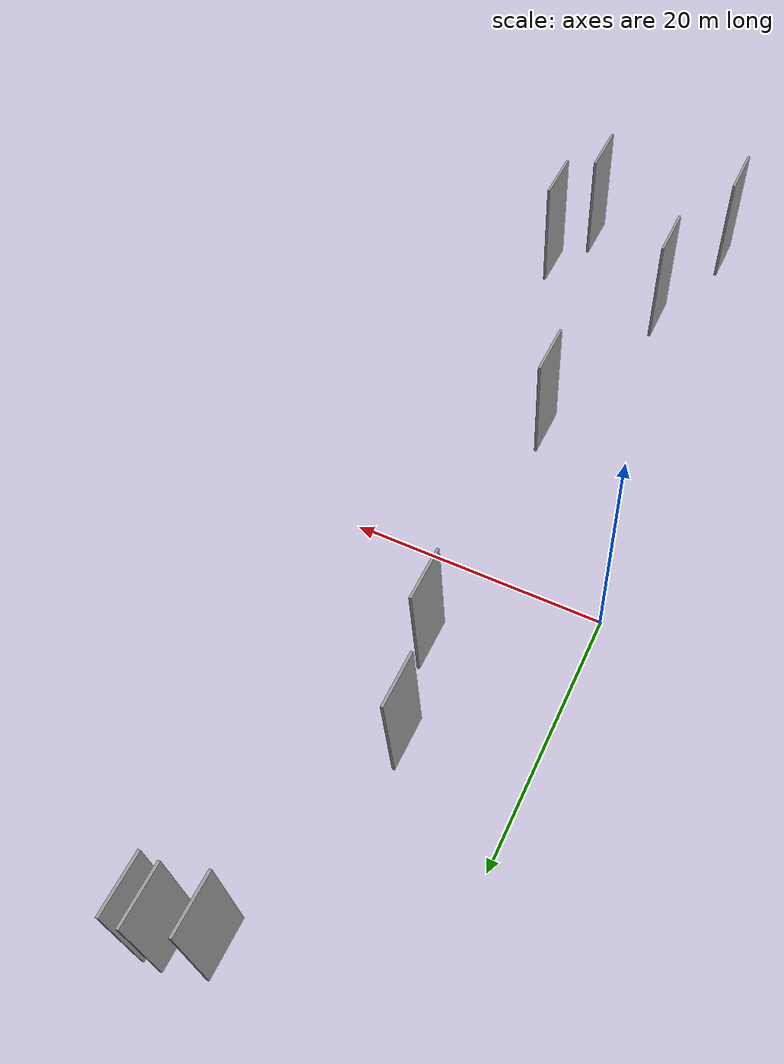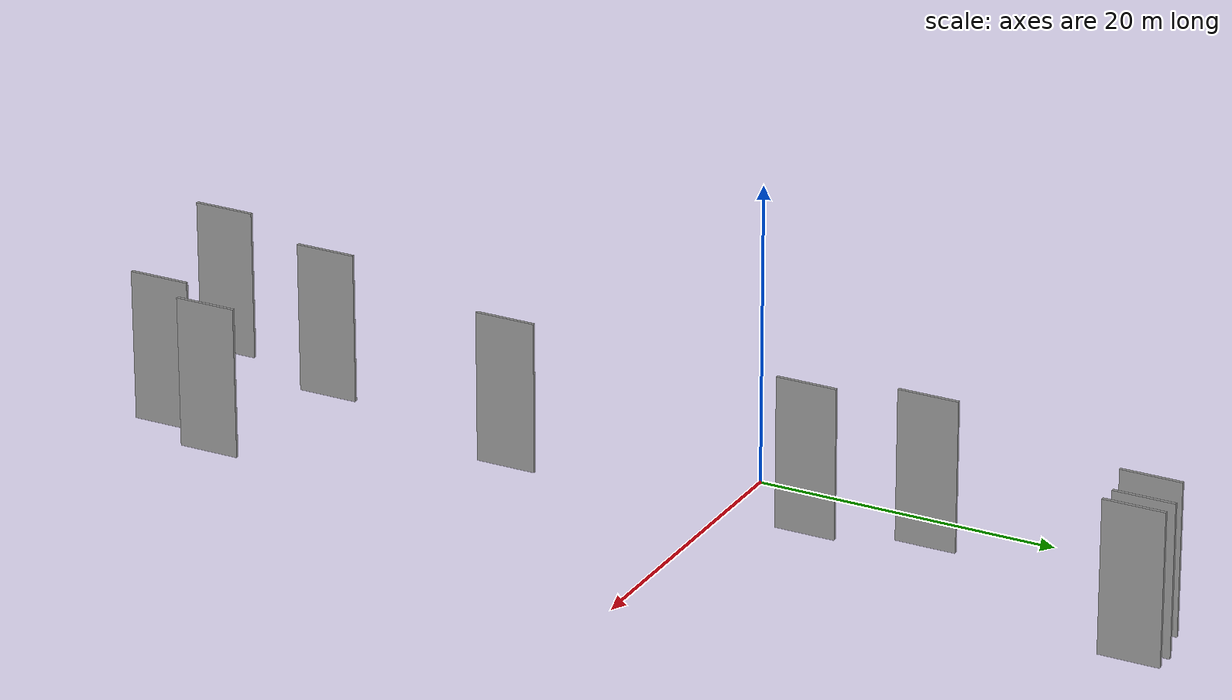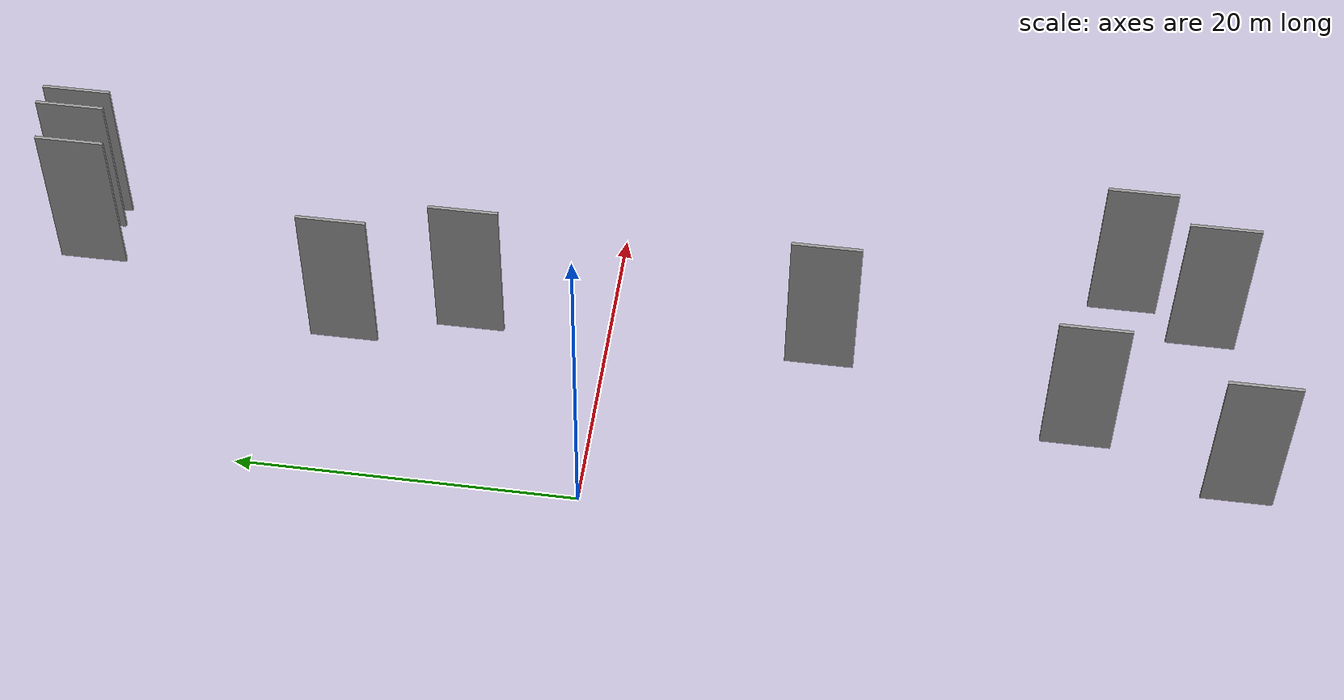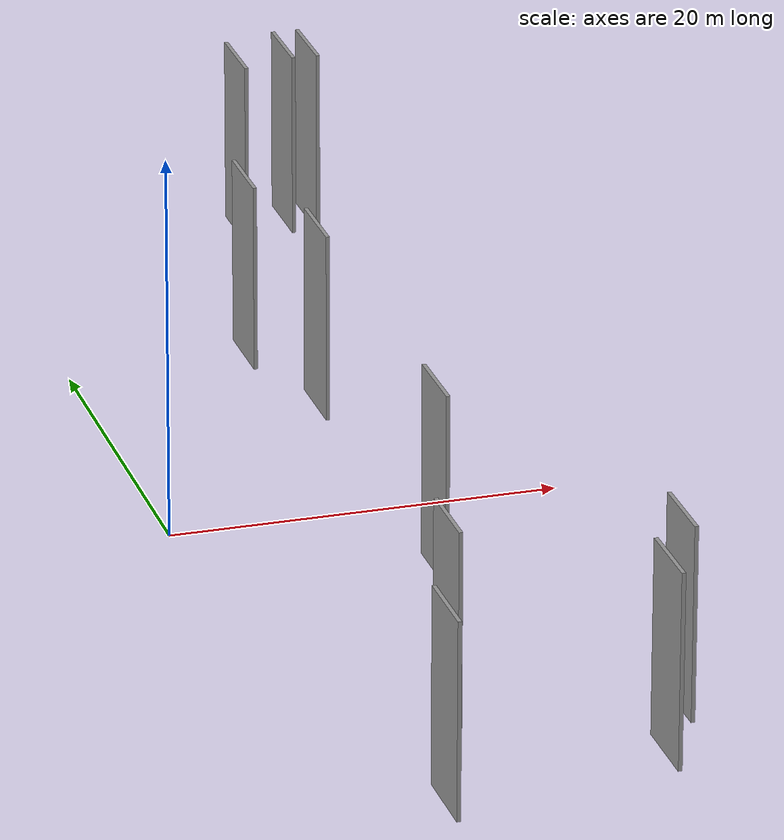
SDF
<sdf version="1.6">
 <world name="default">
  <scene>
   <sky><clouds><speed>12</speed></clouds></sky>
   <ambient>0.4 0.4 0.4 1</ambient>
   <background>0.7 0.7 0.7 1</background>
   <shadows>1</shadows>
  </scene>
  <gravity>0 0 -9.8066</gravity>
  <magnetic_field>6e-06 2.3e-05 -4.2e-05</magnetic_field>
  <physics default="0" name="default_physics" type="ode">
   <ode>
    <solver>
     <type>quick</type>
     <iters>10</iters>
     <sor>1.0</sor>
     <use_dynamic_moi_rescaling>0</use_dynamic_moi_rescaling>
    </solver>
    <constraints>
     <cfm>0</cfm>
     <erp>0.2</erp>
     <contact_max_correcting_vel>100</contact_max_correcting_vel>
     <contact_surface_layer>0.001</contact_surface_layer>
    </constraints>
   </ode>
   <max_step_size>0.004</max_step_size>
   <real_time_factor>1</real_time_factor>
   <real_time_update_rate>250</real_time_update_rate>
  </physics>
  <light name="sun" type="directional">
   <pose>0 0 10 0 0 0</pose>
   <diffuse>0.8 0.8 0.8 1</diffuse>
   <specular>0.2 0.2 0.2 1</specular>
   <attenuation>
    <range>1000</range>
    <constant>0.9</constant>
    <linear>0.01</linear>
    <quadratic>0.001</quadratic>
   </attenuation>
   <direction>-0.5 0.1 -0.9</direction>
  </light>
  <model name="grey_wall_1">
   <static>1</static>
   <pose>12.1936 31.2877 2.5 0.000000 0.000000 1.570796</pose>
   <link name="link">
    <pose>0 0 5.00 0 0 0</pose>
    <collision name="collision"><geometry><box><size>4.00 0.2 10.00</size></box></geometry></collision>
    <visual name="visual">
     <cast_shadows>0</cast_shadows>
     <geometry><box><size>4.00 0.2 10.00</size></box></geometry>
     <material>
      <script>
       <uri>model://grey_wall/materials/scripts</uri>
       <uri>model://grey_wall/materials/textures</uri>
       <name>vrc/grey_wall</name>
      </script>
     </material>
    </visual>
   </link>
  </model>
  <model name="grey_wall_2">
   <static>1</static>
   <pose>9.8751 -12.6578 2.5 0.000000 0.000000 1.570796</pose>
   <link name="link">
    <pose>0 0 5.00 0 0 0</pose>
    <collision name="collision"><geometry><box><size>4.00 0.2 10.00</size></box></geometry></collision>
    <visual name="visual">
     <cast_shadows>0</cast_shadows>
     <geometry><box><size>4.00 0.2 10.00</size></box></geometry>
     <material>
      <script>
       <uri>model://grey_wall/materials/scripts</uri>
       <uri>model://grey_wall/materials/textures</uri>
       <name>vrc/grey_wall</name>
      </script>
     </material>
    </visual>
   </link>
  </model>
  <model name="grey_wall_3">
   <static>1</static>
   <pose>16.4779 -30.0045 2.5 0.000000 0.000000 1.570796</pose>
   <link name="link">
    <pose>0 0 5.00 0 0 0</pose>
    <collision name="collision"><geometry><box><size>4.00 0.2 10.00</size></box></geometry></collision>
    <visual name="visual">
     <cast_shadows>0</cast_shadows>
     <geometry><box><size>4.00 0.2 10.00</size></box></geometry>
     <material>
      <script>
       <uri>model://grey_wall/materials/scripts</uri>
       <uri>model://grey_wall/materials/textures</uri>
       <name>vrc/grey_wall</name>
      </script>
     </material>
    </visual>
   </link>
  </model>
  <model name="grey_wall_4">
   <static>1</static>
   <pose>5.9206 -27.6024 2.5 0.000000 0.000000 1.570796</pose>
   <link name="link">
    <pose>0 0 5.00 0 0 0</pose>
    <collision name="collision"><geometry><box><size>4.00 0.2 10.00</size></box></geometry></collision>
    <visual name="visual">
     <cast_shadows>0</cast_shadows>
     <geometry><box><size>4.00 0.2 10.00</size></box></geometry>
     <material>
      <script>
       <uri>model://grey_wall/materials/scripts</uri>
       <uri>model://grey_wall/materials/textures</uri>
       <name>vrc/grey_wall</name>
      </script>
     </material>
    </visual>
   </link>
  </model>
  <model name="grey_wall_5">
   <static>1</static>
   <pose>14.3065 -34.6107 2.5 0.000000 0.000000 1.570796</pose>
   <link name="link">
    <pose>0 0 5.00 0 0 0</pose>
    <collision name="collision"><geometry><box><size>4.00 0.2 10.00</size></box></geometry></collision>
    <visual name="visual">
     <cast_shadows>0</cast_shadows>
     <geometry><box><size>4.00 0.2 10.00</size></box></geometry>
     <material>
      <script>
       <uri>model://grey_wall/materials/scripts</uri>
       <uri>model://grey_wall/materials/textures</uri>
       <name>vrc/grey_wall</name>
      </script>
     </material>
    </visual>
   </link>
  </model>
  <model name="grey_wall_6">
   <static>1</static>
   <pose>9.8684 7.8735 2.5 0.000000 0.000000 1.570796</pose>
   <link name="link">
    <pose>0 0 5.00 0 0 0</pose>
    <collision name="collision"><geometry><box><size>4.00 0.2 10.00</size></box></geometry></collision>
    <visual name="visual">
     <cast_shadows>0</cast_shadows>
     <geometry><box><size>4.00 0.2 10.00</size></box></geometry>
     <material>
      <script>
       <uri>model://grey_wall/materials/scripts</uri>
       <uri>model://grey_wall/materials/textures</uri>
       <name>vrc/grey_wall</name>
      </script>
     </material>
    </visual>
   </link>
  </model>
  <model name="grey_wall_7">
   <static>1</static>
   <pose>8.1103 15.0847 2.5 0.000000 0.000000 1.570796</pose>
   <link name="link">
    <pose>0 0 5.00 0 0 0</pose>
    <collision name="collision"><geometry><box><size>4.00 0.2 10.00</size></box></geometry></collision>
    <visual name="visual">
     <cast_shadows>0</cast_shadows>
     <geometry><box><size>4.00 0.2 10.00</size></box></geometry>
     <material>
      <script>
       <uri>model://grey_wall/materials/scripts</uri>
       <uri>model://grey_wall/materials/textures</uri>
       <name>vrc/grey_wall</name>
      </script>
     </material>
    </visual>
   </link>
  </model>
  <model name="grey_wall_8">
   <static>1</static>
   <pose>14.9967 32.0511 2.5 0.000000 0.000000 1.570796</pose>
   <link name="link">
    <pose>0 0 5.00 0 0 0</pose>
    <collision name="collision"><geometry><box><size>4.00 0.2 10.00</size></box></geometry></collision>
    <visual name="visual">
     <cast_shadows>0</cast_shadows>
     <geometry><box><size>4.00 0.2 10.00</size></box></geometry>
     <material>
      <script>
       <uri>model://grey_wall/materials/scripts</uri>
       <uri>model://grey_wall/materials/textures</uri>
       <name>vrc/grey_wall</name>
      </script>
     </material>
    </visual>
   </link>
  </model>
  <model name="grey_wall_9">
   <static>1</static>
   <pose>16.3209 32.0037 2.5 0.000000 0.000000 1.570796</pose>
   <link name="link">
    <pose>0 0 5.00 0 0 0</pose>
    <collision name="collision"><geometry><box><size>4.00 0.2 10.00</size></box></geometry></collision>
    <visual name="visual">
     <cast_shadows>0</cast_shadows>
     <geometry><box><size>4.00 0.2 10.00</size></box></geometry>
     <material>
      <script>
       <uri>model://grey_wall/materials/scripts</uri>
       <uri>model://grey_wall/materials/textures</uri>
       <name>vrc/grey_wall</name>
      </script>
     </material>
    </visual>
   </link>
  </model>
  <model name="grey_wall_10">
   <static>1</static>
   <pose>3.0915 -36.6454 2.5 0.000000 0.000000 1.570796</pose>
   <link name="link">
    <pose>0 0 5.00 0 0 0</pose>
    <collision name="collision"><geometry><box><size>4.00 0.2 10.00</size></box></geometry></collision>
    <visual name="visual">
     <cast_shadows>0</cast_shadows>
     <geometry><box><size>4.00 0.2 10.00</size></box></geometry>
     <material>
      <script>
       <uri>model://grey_wall/materials/scripts</uri>
       <uri>model://grey_wall/materials/textures</uri>
       <name>vrc/grey_wall</name>
      </script>
     </material>
    </visual>
   </link>
  </model>
 </world>
</sdf>
